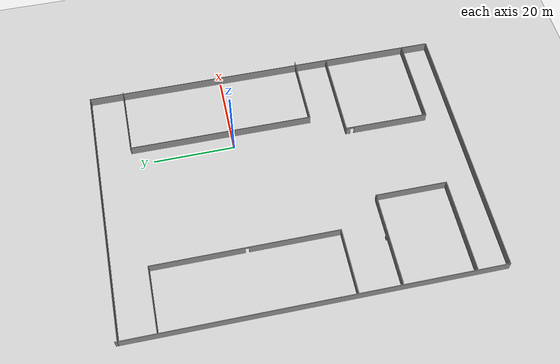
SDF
<sdf version="1.6">
 <world name="default">
  <light name="sun" type="directional">
   <pose>0 0 10 0 -0 0</pose>
   <diffuse>0.8 0.8 0.8 1</diffuse>
   <specular>0.1 0.1 0.1 1</specular>
   <attenuation>
    <range>1000</range>
    <constant>0.9</constant>
    <linear>0.01</linear>
    <quadratic>0.001</quadratic>
   </attenuation>
   <direction>-0.5 0.5 -1</direction>
  </light>
  <model name="ground_plane">
   <static>1</static>
   <link name="link">
    <collision name="collision">
     <geometry><plane><normal>0 0 1</normal><size>100 100</size></plane></geometry>
     <surface><friction><ode><mu>100</mu><mu2>50</mu2></ode></friction></surface>
    </collision>
    <visual name="visual">
     <cast_shadows>0</cast_shadows>
     <geometry><plane><normal>0 0 1</normal><size>100 100</size></plane></geometry>
     <material>
      <script><uri>file://media/materials/scripts/gazebo.material</uri><name>Gazebo/Grey</name></script>
     </material>
    </visual>
   </link>
  </model>
  <gravity>0 0 -9.8</gravity>
  <magnetic_field>6e-06 2.3e-05 -4.2e-05</magnetic_field>
  <atmosphere type="adiabatic"/>
  <physics name="default_physics" default="0" type="ode">
   <max_step_size>0.001</max_step_size>
   <real_time_factor>1</real_time_factor>
   <real_time_update_rate>1000</real_time_update_rate>
  </physics>
  <scene><ambient>0.4 0.4 0.4 1</ambient><background>0.7 0.7 0.7 1</background><shadows>1</shadows></scene>
  <spherical_coordinates>
   <surface_model>EARTH_WGS84</surface_model>
   <latitude_deg>0</latitude_deg>
   <longitude_deg>0</longitude_deg>
   <elevation>0</elevation>
   <heading_deg>0</heading_deg>
  </spherical_coordinates>
  <model name="world_with_doors">
   <pose>-11.9301 -10.6705 0 0 -0 0</pose>
   <link name="Door_5">
    <collision name="Door_5_Collision">
     <geometry><box><size>0.9 0.17 2</size></box></geometry>
     <pose>0 0 1 0 -0 0</pose>
    </collision>
    <visual name="Door_5_Visual">
     <pose>0 0 1 0 -0 0</pose>
     <geometry><box><size>0.9 0.17 2</size></box></geometry>
     <material>
      <script><uri>file://media/materials/scripts/gazebo.material</uri><name>Gazebo/Grey</name></script>
     </material>
    </visual>
    <pose>-20.3957 -19.3682 0 0 -0 0</pose>
   </link>
   <link name="Wall_11">
    <collision name="Wall_11_Collision">
     <geometry><box><size>16.25 0.15 2.5</size></box></geometry>
     <pose>0 0 1.25 0 -0 0</pose>
    </collision>
    <visual name="Wall_11_Visual">
     <pose>0 0 1.25 0 -0 0</pose>
     <geometry><box><size>16.25 0.15 2.5</size></box></geometry>
     <material>
      <script><uri>file://media/materials/scripts/gazebo.material</uri><name>Gazebo/Grey</name></script>
      <ambient>1 1 1 1</ambient>
     </material>
    </visual>
    <pose>-25.1069 35.5172 0 0 -0 0</pose>
   </link>
   <link name="Wall_12">
    <pose>-17.0569 13.0922 0 0 0 -1.5708</pose>
    <visual name="Wall_12_Visual_0">
     <pose>-11.3297 0 1.25 0 -0 0</pose>
     <geometry><box><size>22.3406 0.15 2.5</size></box></geometry>
     <material>
      <script><uri>file://media/materials/scripts/gazebo.material</uri><name>Gazebo/Grey</name></script>
      <ambient>1 1 1 1</ambient>
     </material>
    </visual>
    <collision name="Wall_12_Collision_0">
     <geometry><box><size>22.3406 0.15 2.5</size></box></geometry>
     <pose>-11.3297 0 1.25 0 -0 0</pose>
    </collision>
    <visual name="Wall_12_Visual_1">
     <pose>11.6203 0 1.25 0 -0 0</pose>
     <geometry><box><size>21.7594 0.15 2.5</size></box></geometry>
     <material>
      <script><uri>file://media/materials/scripts/gazebo.material</uri><name>Gazebo/Grey</name></script>
      <ambient>1 1 1 1</ambient>
     </material>
    </visual>
    <collision name="Wall_12_Collision_1">
     <geometry><box><size>21.7594 0.15 2.5</size></box></geometry>
     <pose>11.6203 0 1.25 0 -0 0</pose>
    </collision>
    <visual name="Wall_12_Visual_2">
     <pose>0.29063 0 2.25 0 -0 0</pose>
     <geometry><box><size>0.9 0.15 0.5</size></box></geometry>
     <material>
      <script><uri>file://media/materials/scripts/gazebo.material</uri><name>Gazebo/Grey</name></script>
      <ambient>1 1 1 1</ambient>
     </material>
    </visual>
    <collision name="Wall_12_Collision_2">
     <geometry><box><size>0.9 0.15 0.5</size></box></geometry>
     <pose>0.29063 0 2.25 0 -0 0</pose>
    </collision>
   </link>
   <link name="Wall_13">
    <collision name="Wall_13_Collision">
     <geometry><box><size>16.25 0.15 2.5</size></box></geometry>
     <pose>0 0 1.25 0 -0 0</pose>
    </collision>
    <visual name="Wall_13_Visual">
     <pose>0 0 1.25 0 -0 0</pose>
     <geometry><box><size>16.25 0.15 2.5</size></box></geometry>
     <material>
      <script><uri>file://media/materials/scripts/gazebo.material</uri><name>Gazebo/Grey</name></script>
      <ambient>1 1 1 1</ambient>
     </material>
    </visual>
    <pose>-25.1069 -9.33283 0 0 -0 3.14159</pose>
   </link>
   <link name="Wall_15">
    <collision name="Wall_15_Collision">
     <geometry><box><size>17.5 0.15 2.5</size></box></geometry>
     <pose>0 0 1.25 0 -0 0</pose>
    </collision>
    <visual name="Wall_15_Visual">
     <pose>0 0 1.25 0 -0 0</pose>
     <geometry><box><size>17.5 0.15 2.5</size></box></geometry>
     <material>
      <script><uri>file://media/materials/scripts/gazebo.material</uri><name>Gazebo/Grey</name></script>
      <ambient>1 1 1 1</ambient>
     </material>
    </visual>
    <pose>24.2295 35.8015 0 0 -0 3.14159</pose>
   </link>
   <link name="Wall_16">
    <pose>15.5545 13.2515 0 0 0 -1.5708</pose>
    <visual name="Wall_16_Visual_0">
     <pose>-10.1007 0 1.25 0 -0 0</pose>
     <geometry><box><size>25.0487 0.15 2.5</size></box></geometry>
     <material>
      <script><uri>file://media/materials/scripts/gazebo.material</uri><name>Gazebo/Grey</name></script>
      <ambient>1 1 1 1</ambient>
     </material>
    </visual>
    <collision name="Wall_16_Collision_0">
     <geometry><box><size>25.0487 0.15 2.5</size></box></geometry>
     <pose>-10.1007 0 1.25 0 -0 0</pose>
    </collision>
    <visual name="Wall_16_Visual_1">
     <pose>12.9743 0 1.25 0 -0 0</pose>
     <geometry><box><size>19.3013 0.15 2.5</size></box></geometry>
     <material>
      <script><uri>file://media/materials/scripts/gazebo.material</uri><name>Gazebo/Grey</name></script>
      <ambient>1 1 1 1</ambient>
     </material>
    </visual>
    <collision name="Wall_16_Collision_1">
     <geometry><box><size>19.3013 0.15 2.5</size></box></geometry>
     <pose>12.9743 0 1.25 0 -0 0</pose>
    </collision>
    <visual name="Wall_16_Visual_2">
     <pose>2.87368 0 2.25 0 -0 0</pose>
     <geometry><box><size>0.9 0.15 0.5</size></box></geometry>
     <material>
      <script><uri>file://media/materials/scripts/gazebo.material</uri><name>Gazebo/Grey</name></script>
      <ambient>1 1 1 1</ambient>
     </material>
    </visual>
    <collision name="Wall_16_Collision_2">
     <geometry><box><size>0.9 0.15 0.5</size></box></geometry>
     <pose>2.87368 0 2.25 0 -0 0</pose>
    </collision>
   </link>
   <link name="Wall_17">
    <collision name="Wall_17_Collision">
     <geometry><box><size>18 0.15 2.5</size></box></geometry>
     <pose>0 0 1.25 0 -0 0</pose>
    </collision>
    <visual name="Wall_17_Visual">
     <pose>0 0 1.25 0 -0 0</pose>
     <geometry><box><size>18 0.15 2.5</size></box></geometry>
     <material>
      <script><uri>file://media/materials/scripts/gazebo.material</uri><name>Gazebo/Grey</name></script>
      <ambient>1 1 1 1</ambient>
     </material>
    </visual>
    <pose>24.4795 -9.29853 0 0 -0 0</pose>
   </link>
   <link name="Wall_19">
    <collision name="Wall_19_Collision">
     <geometry><box><size>23.25 0.15 2.5</size></box></geometry>
     <pose>0 0 1.25 0 -0 0</pose>
    </collision>
    <visual name="Wall_19_Visual">
     <pose>0 0 1.25 0 -0 0</pose>
     <geometry><box><size>23.25 0.15 2.5</size></box></geometry>
     <material>
      <script><uri>file://media/materials/scripts/gazebo.material</uri><name>Gazebo/Grey</name></script>
      <ambient>1 1 1 1</ambient>
     </material>
    </visual>
    <pose>-21.383 -19.6406 0 0 -0 0</pose>
   </link>
   <link name="Wall_20">
    <collision name="Wall_20_Collision">
     <geometry><box><size>17.5 0.15 2.5</size></box></geometry>
     <pose>0 0 1.25 0 -0 0</pose>
    </collision>
    <visual name="Wall_20_Visual">
     <pose>0 0 1.25 0 -0 0</pose>
     <geometry><box><size>17.5 0.15 2.5</size></box></geometry>
     <material>
      <script><uri>file://media/materials/scripts/gazebo.material</uri><name>Gazebo/Grey</name></script>
      <ambient>1 1 1 1</ambient>
     </material>
    </visual>
    <pose>-9.83295 -28.3156 0 0 0 -1.5708</pose>
   </link>
   <link name="Wall_21">
    <collision name="Wall_21_Collision">
     <geometry><box><size>23.5 0.15 2.5</size></box></geometry>
     <pose>0 0 1.25 0 -0 0</pose>
    </collision>
    <visual name="Wall_21_Visual">
     <pose>0 0 1.25 0 -0 0</pose>
     <geometry><box><size>23.5 0.15 2.5</size></box></geometry>
     <material>
      <script><uri>file://media/materials/scripts/gazebo.material</uri><name>Gazebo/Grey</name></script>
      <ambient>1 1 1 1</ambient>
     </material>
    </visual>
    <pose>-21.508 -36.9906 0 0 -0 3.14159</pose>
   </link>
   <link name="Wall_23">
    <collision name="Wall_23_Collision">
     <geometry><box><size>22.25 0.15 2.5</size></box></geometry>
     <pose>0 0 1.25 0 -0 0</pose>
    </collision>
    <visual name="Wall_23_Visual">
     <pose>0 0 1.25 0 -0 0</pose>
     <geometry><box><size>22.25 0.15 2.5</size></box></geometry>
     <material>
      <script><uri>file://media/materials/scripts/gazebo.material</uri><name>Gazebo/Grey</name></script>
      <ambient>1 1 1 1</ambient>
     </material>
    </visual>
    <pose>21.3594 -17.413 0 0 -0 3.14159</pose>
   </link>
   <link name="Wall_24">
    <pose>10.3094 -27.713 0 0 0 -1.5708</pose>
    <visual name="Wall_24_Visual_0">
     <pose>-9.79836 0 1.25 0 -0 0</pose>
     <geometry><box><size>1.15329 0.15 2.5</size></box></geometry>
     <material>
      <script><uri>file://media/materials/scripts/gazebo.material</uri><name>Gazebo/Grey</name></script>
      <ambient>1 1 1 1</ambient>
     </material>
    </visual>
    <collision name="Wall_24_Collision_0">
     <geometry><box><size>1.15329 0.15 2.5</size></box></geometry>
     <pose>-9.79836 0 1.25 0 -0 0</pose>
    </collision>
    <visual name="Wall_24_Visual_1">
     <pose>1.02665 0 1.25 0 -0 0</pose>
     <geometry><box><size>18.6967 0.15 2.5</size></box></geometry>
     <material>
      <script><uri>file://media/materials/scripts/gazebo.material</uri><name>Gazebo/Grey</name></script>
      <ambient>1 1 1 1</ambient>
     </material>
    </visual>
    <collision name="Wall_24_Collision_1">
     <geometry><box><size>18.6967 0.15 2.5</size></box></geometry>
     <pose>1.02665 0 1.25 0 -0 0</pose>
    </collision>
    <visual name="Wall_24_Visual_2">
     <pose>-8.77171 0 2.25 0 -0 0</pose>
     <geometry><box><size>0.9 0.15 0.5</size></box></geometry>
     <material>
      <script><uri>file://media/materials/scripts/gazebo.material</uri><name>Gazebo/Grey</name></script>
      <ambient>1 1 1 1</ambient>
     </material>
    </visual>
    <collision name="Wall_24_Collision_2">
     <geometry><box><size>0.9 0.15 0.5</size></box></geometry>
     <pose>-8.77171 0 2.25 0 -0 0</pose>
    </collision>
   </link>
   <link name="Wall_25">
    <collision name="Wall_25_Collision">
     <geometry><box><size>22.25 0.15 2.5</size></box></geometry>
     <pose>0 0 1.25 0 -0 0</pose>
    </collision>
    <visual name="Wall_25_Visual">
     <pose>0 0 1.25 0 -0 0</pose>
     <geometry><box><size>22.25 0.15 2.5</size></box></geometry>
     <material>
      <script><uri>file://media/materials/scripts/gazebo.material</uri><name>Gazebo/Grey</name></script>
      <ambient>1 1 1 1</ambient>
     </material>
    </visual>
    <pose>21.3594 -38.013 0 0 -0 0</pose>
   </link>
   <link name="Wall_6">
    <collision name="Wall_6_Collision">
     <geometry><box><size>89.5 0.15 2.5</size></box></geometry>
     <pose>0 0 1.25 0 -0 0</pose>
    </collision>
    <visual name="Wall_6_Visual">
     <pose>0 0 1.25 0 -0 0</pose>
     <geometry><box><size>89.5 0.15 2.5</size></box></geometry>
     <material>
      <script><uri>file://media/materials/scripts/gazebo.material</uri><name>Gazebo/Grey</name></script>
      <ambient>1 1 1 1</ambient>
     </material>
    </visual>
    <pose>-33.4045 1e-06 0 0 0 -1.5708</pose>
   </link>
   <link name="Wall_7">
    <collision name="Wall_7_Collision">
     <geometry><box><size>66 0.15 2.5</size></box></geometry>
     <pose>0 0 1.25 0 -0 0</pose>
    </collision>
    <visual name="Wall_7_Visual">
     <pose>0 0 1.25 0 -0 0</pose>
     <geometry><box><size>66 0.15 2.5</size></box></geometry>
     <material>
      <script><uri>file://media/materials/scripts/gazebo.material</uri><name>Gazebo/Grey</name></script>
      <ambient>1 1 1 1</ambient>
     </material>
    </visual>
    <pose>-0.479456 -44.675 0 0 -0 0</pose>
   </link>
   <link name="Wall_8">
    <collision name="Wall_8_Collision">
     <geometry><box><size>89 0.15 2.5</size></box></geometry>
     <pose>0 0 1.25 0 -0 0</pose>
    </collision>
    <visual name="Wall_8_Visual">
     <pose>0 0 1.25 0 -0 0</pose>
     <geometry><box><size>89 0.15 2.5</size></box></geometry>
     <material>
      <script><uri>file://media/materials/scripts/gazebo.material</uri><name>Gazebo/Grey</name></script>
      <ambient>1 1 1 1</ambient>
     </material>
    </visual>
    <pose>32.4455 -0.249999 0 0 -0 1.5708</pose>
   </link>
   <link name="Wall_9">
    <collision name="Wall_9_Collision">
     <geometry><box><size>66 0.15 2.5</size></box></geometry>
     <pose>0 0 1.25 0 -0 0</pose>
    </collision>
    <visual name="Wall_9_Visual">
     <pose>0 0 1.25 0 -0 0</pose>
     <geometry><box><size>66 0.15 2.5</size></box></geometry>
     <material>
      <script><uri>file://media/materials/scripts/gazebo.material</uri><name>Gazebo/Grey</name></script>
      <ambient>1 1 1 1</ambient>
     </material>
    </visual>
    <pose>-0.479456 44.175 0 0 -0 3.14159</pose>
   </link>
   <static>1</static>
  </model>
 </world>
</sdf>
